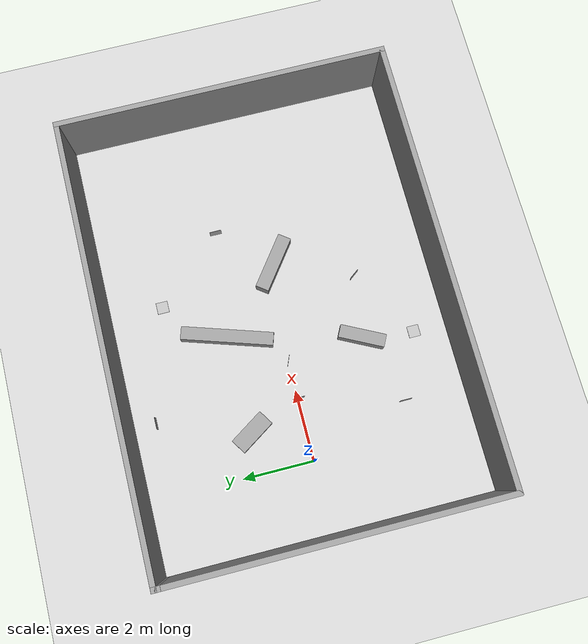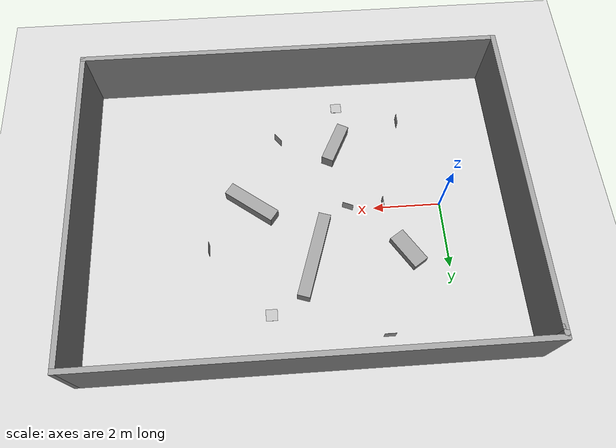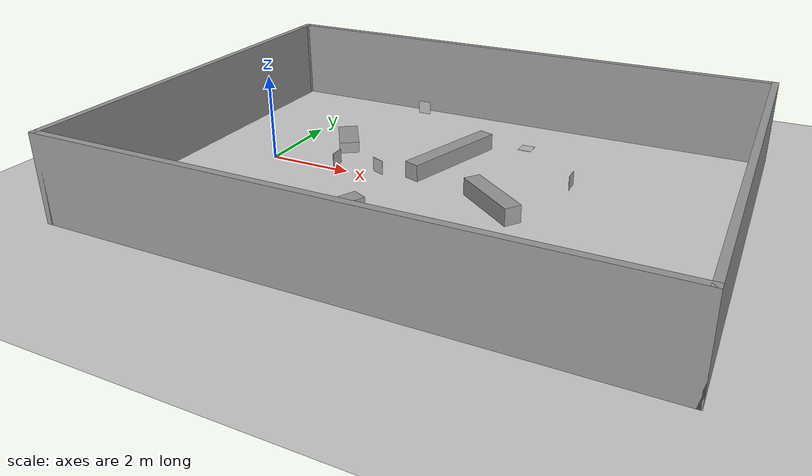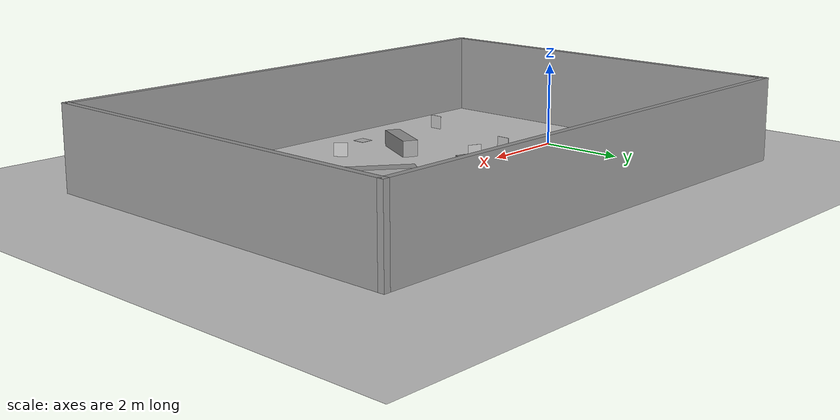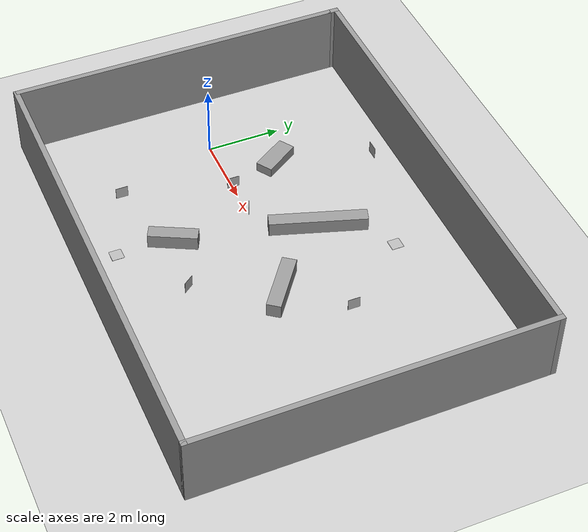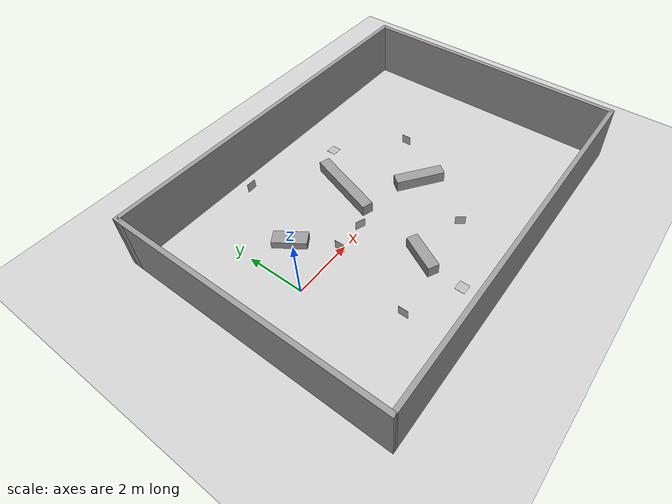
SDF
<sdf version="1.6">
 <world name="default">
  <light name="sun" type="directional">
   <pose>0 0 10 0 -0 0</pose>
   <diffuse>0.8 0.8 0.8 1</diffuse>
   <specular>0.2 0.2 0.2 1</specular>
   <attenuation>
    <range>1000</range>
    <constant>0.9</constant>
    <linear>0.01</linear>
    <quadratic>0.001</quadratic>
   </attenuation>
   <direction>-0.5 0.1 -0.9</direction>
  </light>
  <model name="ground_plane">
   <static>1</static>
   <link name="link">
    <collision name="collision">
     <geometry><plane><normal>0 0 1</normal><size>100 100</size></plane></geometry>
     <surface><friction><ode><mu>100</mu><mu2>50</mu2></ode></friction></surface>
    </collision>
    <visual name="visual">
     <cast_shadows>0</cast_shadows>
     <geometry><plane><normal>0 0 1</normal><size>100 100</size></plane></geometry>
     <material>
      <script><uri>file://media/materials/scripts/gazebo.material</uri><name>Gazebo/Grey</name></script>
     </material>
    </visual>
   </link>
  </model>
  <gravity>0 0 -9.8</gravity>
  <magnetic_field>6e-06 2.3e-05 -4.2e-05</magnetic_field>
  <atmosphere type="adiabatic"/>
  <physics name="default_physics" default="0" type="ode">
   <max_step_size>0.001</max_step_size>
   <real_time_factor>1</real_time_factor>
   <real_time_update_rate>1000</real_time_update_rate>
  </physics>
  <scene><ambient>0.4 0.4 0.4 1</ambient><background>0.7 0.7 0.7 1</background><shadows>1</shadows></scene>
  <audio><device>default</device></audio>
  <spherical_coordinates>
   <surface_model>EARTH_WGS84</surface_model>
   <latitude_deg>0</latitude_deg>
   <longitude_deg>0</longitude_deg>
   <elevation>0</elevation>
   <heading_deg>0</heading_deg>
  </spherical_coordinates>
  <model name="Aruco tag0">
   <static>1</static>
   <link name="robot_link">
    <visual name="front_visual">
     <pose>0 0 0.0025 0 -0 0</pose>
     <geometry><box><size>0.33 0.33 0.005</size></box></geometry>
     <material>
      <script>
       <uri>model://tag_0/materials/scripts/</uri>
       <uri>model://tag_0/materials/textures/</uri>
       <name>Aruco/tag0</name>
      </script>
     </material>
    </visual>
    <visual name="rear_visual">
     <pose>0 0 -0.0025 0 -0 -3.14159</pose>
     <geometry><box><size>0.33 0.33 0.005</size></box></geometry>
    </visual>
   </link>
   <pose>1.75577 -0.01544 0.300001 -1.57005 -1.57 1.57005</pose>
  </model>
  <model name="room">
   <pose>4.24359 -0.002696 -0.539076 0 -0 0</pose>
   <link name="Wall_23">
    <collision name="Wall_23_Collision">
     <geometry><box><size>9.25 0.15 2.5</size></box></geometry>
     <pose>0 0 1.25 0 -0 0</pose>
    </collision>
    <visual name="Wall_23_Visual">
     <pose>0 0 1.25 0 -0 0</pose>
     <geometry><box><size>9.25 0.15 2.5</size></box></geometry>
     <material>
      <script><uri>file://media/materials/scripts/gazebo.material</uri><name>Gazebo/Grey</name></script>
      <ambient>1 1 1 1</ambient>
     </material>
     <meta><layer>0</layer></meta>
    </visual>
    <pose>-6.3 -0.125 0 0 -0 -1.5708</pose>
   </link>
   <link name="Wall_24">
    <collision name="Wall_24_Collision">
     <geometry><box><size>12.75 0.15 2.5</size></box></geometry>
     <pose>0 0 1.25 0 -0 0</pose>
    </collision>
    <visual name="Wall_24_Visual">
     <pose>0 0 1.25 0 -0 0</pose>
     <geometry><box><size>12.75 0.15 2.5</size></box></geometry>
     <material>
      <script><uri>file://media/materials/scripts/gazebo.material</uri><name>Gazebo/Grey</name></script>
      <ambient>1 1 1 1</ambient>
     </material>
     <meta><layer>0</layer></meta>
    </visual>
    <pose>-0 -4.675 0 0 -0 0</pose>
   </link>
   <link name="Wall_25">
    <collision name="Wall_25_Collision">
     <geometry><box><size>9.5 0.15 2.5</size></box></geometry>
     <pose>0 0 1.25 0 -0 0</pose>
    </collision>
    <visual name="Wall_25_Visual">
     <pose>0 0 1.25 0 -0 0</pose>
     <geometry><box><size>9.5 0.15 2.5</size></box></geometry>
     <material>
      <script><uri>file://media/materials/scripts/gazebo.material</uri><name>Gazebo/Grey</name></script>
      <ambient>1 1 1 1</ambient>
     </material>
     <meta><layer>0</layer></meta>
    </visual>
    <pose>6.3 0 0 0 -0 1.5708</pose>
   </link>
   <link name="Wall_26">
    <collision name="Wall_26_Collision">
     <geometry><box><size>12.75 0.15 2.5</size></box></geometry>
     <pose>0 0 1.25 0 -0 0</pose>
    </collision>
    <visual name="Wall_26_Visual">
     <pose>0 0 1.25 0 -0 0</pose>
     <geometry><box><size>12.75 0.15 2.5</size></box></geometry>
     <material>
      <script><uri>file://media/materials/scripts/gazebo.material</uri><name>Gazebo/Grey</name></script>
      <ambient>1 1 1 1</ambient>
     </material>
     <meta><layer>0</layer></meta>
    </visual>
    <pose>-0 4.675 0 0 -0 3.14159</pose>
   </link>
   <link name="Wall_27">
    <collision name="Wall_27_Collision">
     <geometry><box><size>0.4 0.15 2.5</size></box></geometry>
     <pose>0 0 1.25 0 -0 0</pose>
    </collision>
    <visual name="Wall_27_Visual">
     <pose>0 0 1.25 0 -0 0</pose>
     <geometry><box><size>0.4 0.15 2.5</size></box></geometry>
     <material>
      <script><uri>file://media/materials/scripts/gazebo.material</uri><name>Gazebo/Grey</name></script>
      <ambient>1 1 1 1</ambient>
     </material>
     <meta><layer>0</layer></meta>
    </visual>
    <pose>-6.3 4.55 0 0 -0 -1.5708</pose>
   </link>
   <static>1</static>
  </model>
  <model name="unit_box_0_clone">
   <pose>3.92537 1.49464 0.197767 0 -0.00012 -1.88429</pose>
   <link name="link">
    <inertial>
     <mass>1</mass>
     <inertia>
      <ixx>0.166667</ixx>
      <ixy>0</ixy>
      <ixz>0</ixz>
      <iyy>0.166667</iyy>
      <iyz>0</iyz>
      <izz>0.166667</izz>
     </inertia>
    </inertial>
    <collision name="collision"><geometry><box><size>2.60321 0.367688 0.395847</size></box></geometry></collision>
    <visual name="visual">
     <geometry><box><size>2.60321 0.367688 0.395847</size></box></geometry>
     <material>
      <script><name>Gazebo/Grey</name><uri>file://media/materials/scripts/gazebo.material</uri></script>
     </material>
    </visual>
   </link>
  </model>
  <model name="Aruco tag1">
   <static>1</static>
   <link name="robot_link">
    <visual name="front_visual">
     <geometry><box><size>0.33 0.33 0.005</size></box></geometry>
     <material>
      <script>
       <uri>file://tag_1/materials/scripts/</uri>
       <uri>file://tag_1/materials/textures/</uri>
       <name>Aruco/tag1</name>
      </script>
     </material>
    </visual>
    <visual name="rear_visual">
     <pose>0 0 -0.0025 0 -0 -3.14159</pose>
     <geometry><box><size>0.33 0.33 0.005</size></box></geometry>
     <material>
      <script>
       <uri>file://tag_1/materials/scripts/</uri>
       <uri>file://tag_1/materials/textures/</uri>
       <name>Aruco/tag1</name>
      </script>
     </material>
    </visual>
   </link>
   <pose>6.9606 1.11128 0.3 1.56185 -0 1.57</pose>
  </model>
  <model name="unit_box_0_clone_clone">
   <pose>5.67504 -0.28626 0.197923 0 0 -0.644801</pose>
   <link name="link">
    <inertial>
     <mass>1</mass>
     <inertia>
      <ixx>0.166667</ixx>
      <ixy>0</ixy>
      <ixz>0</ixz>
      <iyy>0.166667</iyy>
      <iyz>0</iyz>
      <izz>0.166667</izz>
     </inertia>
    </inertial>
    <collision name="collision"><geometry><box><size>1.66245 0.387739 0.395847</size></box></geometry></collision>
    <visual name="visual">
     <geometry><box><size>1.66245 0.387739 0.395847</size></box></geometry>
     <material>
      <script><name>Gazebo/Grey</name><uri>file://media/materials/scripts/gazebo.material</uri></script>
     </material>
    </visual>
   </link>
  </model>
  <model name="unit_box_0_clone_clone_clone">
   <pose>2.99682 -2.17855 0.197923 0 -0 1.10245</pose>
   <link name="link">
    <inertial>
     <mass>1</mass>
     <inertia>
      <ixx>0.166667</ixx>
      <ixy>0</ixy>
      <ixz>0</ixz>
      <iyy>0.166667</iyy>
      <iyz>0</iyz>
      <izz>0.166667</izz>
     </inertia>
    </inertial>
    <collision name="collision"><geometry><box><size>1.3106 0.367688 0.395847</size></box></geometry></collision>
    <visual name="visual">
     <geometry><box><size>1.3106 0.367688 0.395847</size></box></geometry>
     <material>
      <script><name>Gazebo/Grey</name><uri>file://media/materials/scripts/gazebo.material</uri></script>
     </material>
    </visual>
   </link>
  </model>
  <model name="Aruco tag5">
   <static>1</static>
   <link name="robot_link">
    <visual name="front_visual">
     <geometry><box><size>0.33 0.33 0.005</size></box></geometry>
     <material>
      <script>
       <uri>file://tag_5/materials/scripts/</uri>
       <uri>file://tag_5/materials/textures/</uri>
       <name>Aruco/tag5</name>
      </script>
     </material>
    </visual>
    <visual name="rear_visual">
     <pose>0 0 -0.0025 0 -0 -3.14159</pose>
     <geometry><box><size>0.33 0.33 0.005</size></box></geometry>
     <material>
      <script>
       <uri>file://tag_5/materials/scripts/</uri>
       <uri>file://tag_5/materials/textures/</uri>
       <name>Aruco/tag5</name>
      </script>
     </material>
    </visual>
   </link>
   <pose>2.04039 3.9458 0.3 1.57 -0 0</pose>
  </model>
  <model name="Aruco tag3">
   <static>1</static>
   <link name="robot_link">
    <visual name="front_visual">
     <geometry><box><size>0.33 0.33 0.005</size></box></geometry>
     <material>
      <script>
       <uri>file://tag_3/materials/scripts/</uri>
       <uri>file://tag_3/materials/textures/</uri>
       <name>Aruco/tag3</name>
      </script>
     </material>
    </visual>
    <visual name="rear_visual">
     <pose>0 0 -0.0025 0 -0 -3.14159</pose>
     <geometry><box><size>0.33 0.33 0.005</size></box></geometry>
     <material>
      <script>
       <uri>file://tag_3/materials/scripts/</uri>
       <uri>file://tag_3/materials/textures/</uri>
       <name>Aruco/tag3</name>
      </script>
     </material>
    </visual>
   </link>
   <pose>4.77181 -2.43114 0.3 2.49477 1.57 0.000396</pose>
  </model>
  <model name="unit_box_0">
   <pose>1.16812 1.45366 0.132146 0 -0 0.574933</pose>
   <link name="link">
    <inertial>
     <mass>1</mass>
     <inertia>
      <ixx>0.166667</ixx>
      <ixy>0</ixy>
      <ixz>0</ixz>
      <iyy>0.166667</iyy>
      <iyz>0</iyz>
      <izz>0.166667</izz>
     </inertia>
    </inertial>
    <collision name="collision"><geometry><box><size>0.473245 1.10894 0.264293</size></box></geometry></collision>
    <visual name="visual">
     <geometry><box><size>0.473245 1.10894 0.264293</size></box></geometry>
     <material>
      <script><name>Gazebo/Grey</name><uri>file://media/materials/scripts/gazebo.material</uri></script>
     </material>
    </visual>
   </link>
  </model>
  <model name="Aruco tag4">
   <static>1</static>
   <link name="robot_link">
    <visual name="front_visual">
     <geometry><box><size>0.33 0.33 0.005</size></box></geometry>
     <material>
      <script>
       <uri>file://tag_4/materials/scripts/</uri>
       <uri>file://tag_4/materials/textures/</uri>
       <name>Aruco/tag4</name>
      </script>
     </material>
    </visual>
    <visual name="rear_visual">
     <pose>0 0 -0.0025 0 -0 -3.14159</pose>
     <geometry><box><size>0.33 0.33 0.005</size></box></geometry>
     <material>
      <script>
       <uri>file://tag_4/materials/scripts/</uri>
       <uri>file://tag_4/materials/textures/</uri>
       <name>Aruco/tag4</name>
      </script>
     </material>
    </visual>
   </link>
   <pose>0.980906 -2.87626 0.3 1.57 -0 1.57</pose>
  </model>
  <model name="Aruco tag2">
   <static>1</static>
   <link name="robot_link">
    <visual name="front_visual">
     <geometry><box><size>0.33 0.33 0.005</size></box></geometry>
     <material>
      <script>
       <uri>file://tag_2/materials/scripts/</uri>
       <uri>file://tag_2/materials/textures/</uri>
       <name>Aruco/tag2</name>
      </script>
     </material>
    </visual>
    <visual name="rear_visual">
     <pose>0 0 -0.0025 0 -0 -3.14159</pose>
     <geometry><box><size>0.33 0.33 0.005</size></box></geometry>
     <material>
      <script>
       <uri>file://tag_2/materials/scripts/</uri>
       <uri>file://tag_2/materials/textures/</uri>
       <name>Aruco/tag2</name>
      </script>
     </material>
    </visual>
   </link>
   <pose>2.81519 0.008642 0.3 -0.399928 -1.57 -1.57047</pose>
  </model>
  <model name="Aruco tag6">
   <static>1</static>
   <link name="robot_link">
    <visual name="front_visual">
     <geometry><box><size>0.33 0.33 0.005</size></box></geometry>
     <material>
      <script>
       <uri>file://tag_6/materials/scripts/</uri>
       <uri>file://tag_6/materials/textures/</uri>
       <name>Aruco/tag6</name>
      </script>
     </material>
    </visual>
    <visual name="rear_visual">
     <pose>0 0 -0.0025 0 -0 -3.14159</pose>
     <geometry><box><size>0.33 0.33 0.005</size></box></geometry>
     <material>
      <script>
       <uri>file://tag_6/materials/scripts/</uri>
       <uri>file://tag_6/materials/textures/</uri>
       <name>Aruco/tag6</name>
      </script>
     </material>
    </visual>
   </link>
   <pose>5.25017 3.10203 0 0 -0 0</pose>
  </model>
  <model name="Aruco tag7">
   <static>1</static>
   <link name="robot_link">
    <visual name="front_visual">
     <geometry><box><size>0.33 0.33 0.005</size></box></geometry>
     <material>
      <script>
       <uri>file://tag_7/materials/scripts/</uri>
       <uri>file://tag_7/materials/textures/</uri>
       <name>Aruco/tag7</name>
      </script>
     </material>
    </visual>
    <visual name="rear_visual">
     <pose>0 0 -0.0025 0 -0 -3.14159</pose>
     <geometry><box><size>0.33 0.33 0.005</size></box></geometry>
     <material>
      <script>
       <uri>file://tag_7/materials/scripts/</uri>
       <uri>file://tag_7/materials/textures/</uri>
       <name>Aruco/tag7</name>
      </script>
     </material>
    </visual>
   </link>
   <pose>2.82344 -3.68416 0 0 -0 0</pose>
  </model>
 </world>
</sdf>
